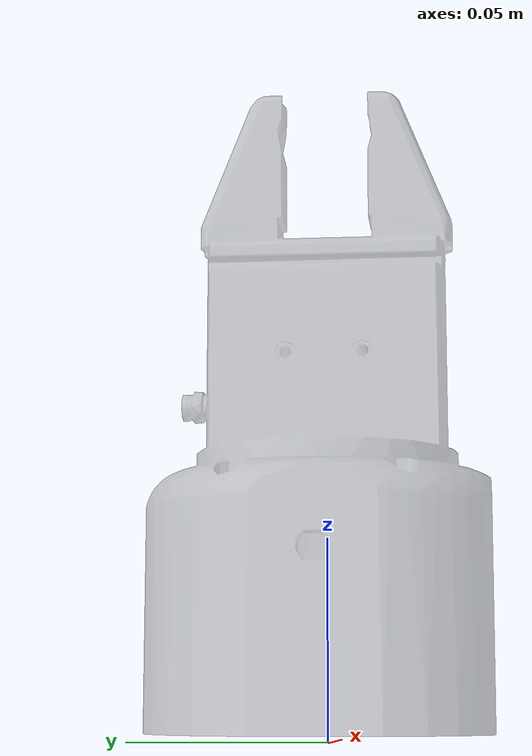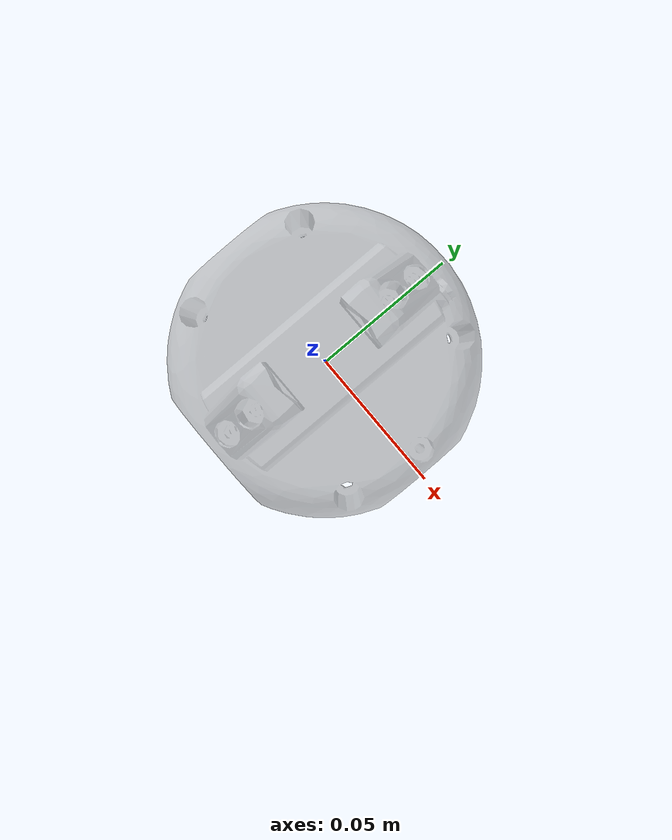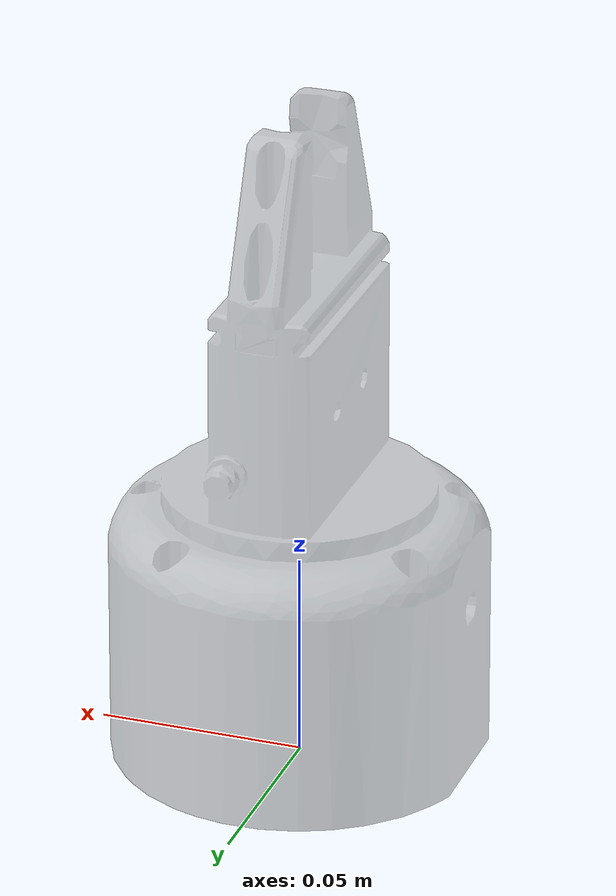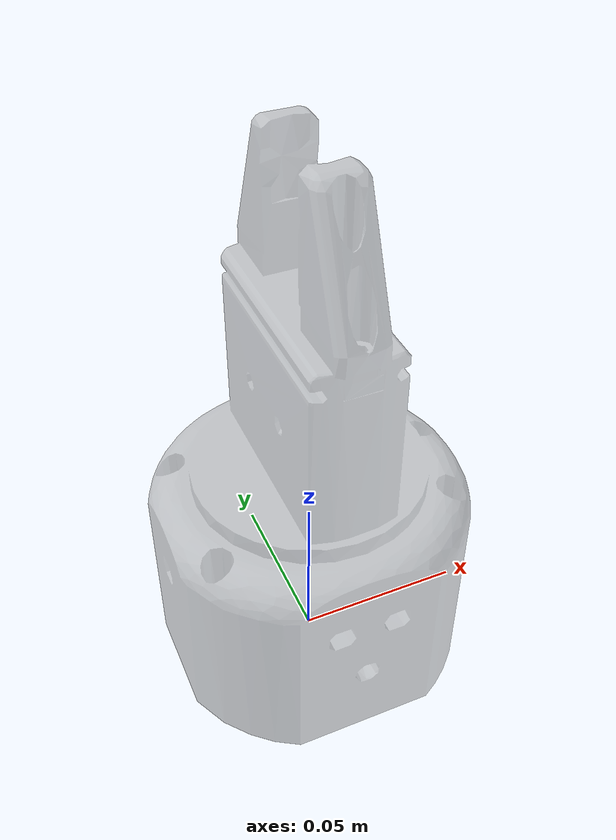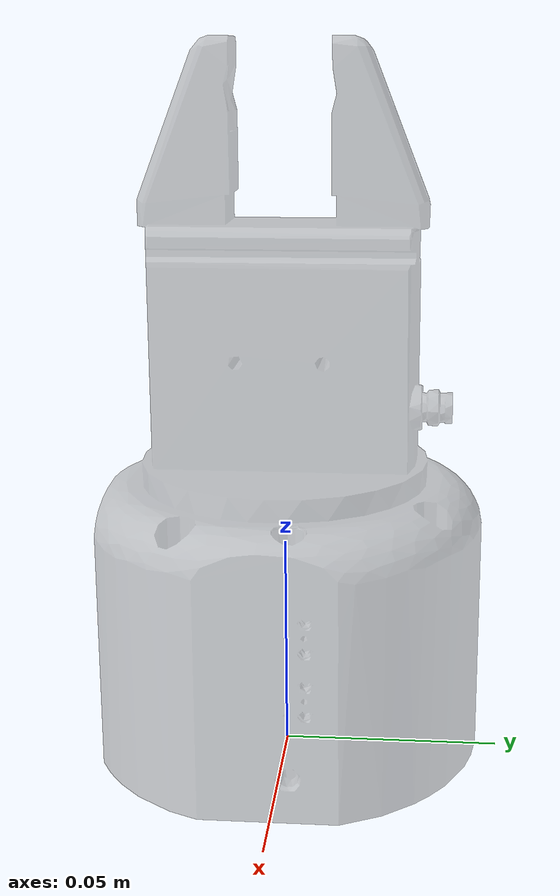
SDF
<?xml version="1.0"?>
<sdf version="1.5">
<model name="start_gripper">
  <pose>0 0 0 0 0 0</pose>
  <link name="start_gripper">
    <visual name="visual_00">
        <transparency>0.5</transparency>
        <geometry>
          <mesh>
            <uri>file://start_goal/meshes/gripper_low_poly.stl</uri>
            <scale>1 1 1</scale>
          </mesh>
        </geometry>
        <material><script>
          <uri>file://media/materials/scripts/gazebo.material</uri>
          <name>Gazebo/Grey</name>
        </script></material>
      </visual>
    <self_collide>0</self_collide>
    <kinematic>0</kinematic>
    <gravity>0</gravity>
  </link>
</model>
</sdf>
